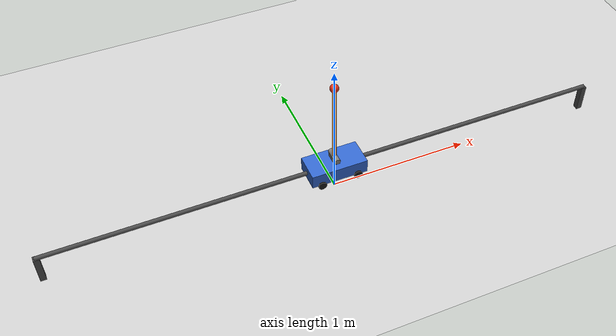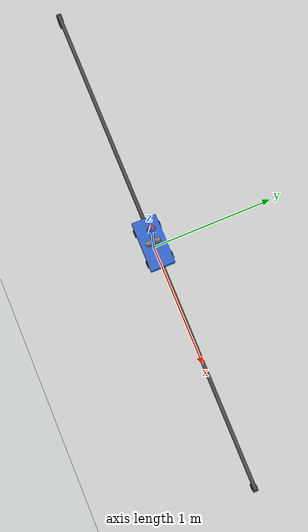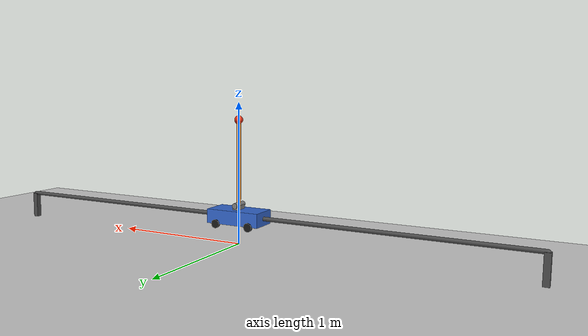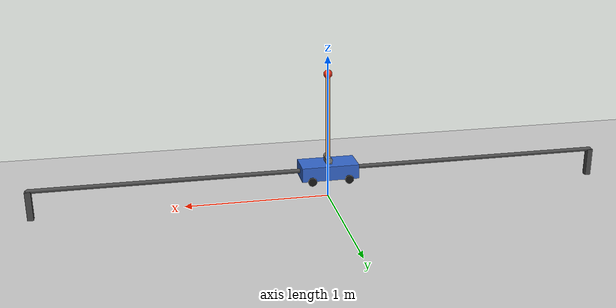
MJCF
<!--
  Cartpole: a cart on a rail, with a pole hinged on top.
  Units: meters, kilograms, seconds, radians, newtons.
  Axes: x = along the rail, z = up. The pole swings in the x-z plane.
-->
<mujoco model="cartpole">

  <!-- ============ PHYSICS SETTINGS ============ -->
  <!-- timestep: smaller = more accurate but slower (0.002 s = 500 physics steps per second)
       integrator: "implicitfast" handles damping/friction more stably than the default -->
  <option timestep="0.002" integrator="implicitfast" gravity="0 0 -9.81">
    <!-- MuJoCo normally skips collisions between a body and its parent (pole and cart).
         Disabling that filter lets the pole hit the cart instead of passing through it. -->
    <flag filterparent="disable"/>
  </option>

  <!-- ============ DEFAULTS ============ -->
  <!-- Every geom gets these unless it overrides them.
       contype/conaffinity = 0 means "no collisions" (used for purely visual parts). -->
  <default>
    <geom contype="0" conaffinity="0"/>

    <default class="solid">
      <geom contype="1" conaffinity="1" friction="0.8" solref="0.005 1"/>
    </default>
  </default>

  <!-- ============ LOOKS (no effect on physics) ============ -->
  <asset>
    <texture name="grid" type="2d" builtin="checker" rgb1="0.85 0.85 0.85" rgb2="0.75 0.75 0.75"
             width="512" height="512"/>
    <material name="grid" texture="grid" texrepeat="8 8"/>
  </asset>

  <worldbody>
    <light pos="0 -1 3" dir="0 0.3 -1"/>
    <geom name="floor" class="solid" type="plane" size="3 3 0.1" material="grid"/>

    <!-- Camera that follows the cart. In the viewer: Camera dropdown -> "follow" -->
    <camera name="follow" mode="trackcom" pos="0 -3 0.8" xyaxes="1 0 0 0 0.2 1"/>

    <!-- ============ RAIL (fixed to the world) ============ -->
    <geom name="rail" type="capsule" fromto="-2 0 0.2  2 0 0.2" size="0.015" rgba="0.3 0.3 0.3 1"/>
    <!-- Rail and end posts are visual only: the slider joint's range acts as the end stop -->
    <geom name="post_left"  type="box" pos="-2 0 0.1" size="0.02 0.02 0.1" rgba="0.3 0.3 0.3 1"/>
    <geom name="post_right" type="box" pos=" 2 0 0.1" size="0.02 0.02 0.1" rgba="0.3 0.3 0.3 1"/>

    <!-- ============ CART ============ -->
    <body name="cart" pos="0 0 0.2">
      <joint name="slider" type="slide" axis="1 0 0"
             limited="true" range="-1.8 1.8"
             damping="1.0" frictionloss="0.5" armature="0.05"/>

      <!-- Cart body. Box size is HALF-lengths: this is 0.4 x 0.2 x 0.1 m. -->
      <geom name="cart_geom" class="solid" type="box" size="0.2 0.1 0.05" mass="1.0" rgba="0.2 0.4 0.8 1"/>

      <!-- Wheels (looks only, mass 0 so they don't change the physics) -->
      <geom name="wheel_fl" type="cylinder" pos=" 0.13  0.1 -0.05" euler="90 0 0" size="0.03 0.01" mass="0" rgba="0.1 0.1 0.1 1"/>
      <geom name="wheel_fr" type="cylinder" pos=" 0.13 -0.1 -0.05" euler="90 0 0" size="0.03 0.01" mass="0" rgba="0.1 0.1 0.1 1"/>
      <geom name="wheel_bl" type="cylinder" pos="-0.13  0.1 -0.05" euler="90 0 0" size="0.03 0.01" mass="0" rgba="0.1 0.1 0.1 1"/>
      <geom name="wheel_br" type="cylinder" pos="-0.13 -0.1 -0.05" euler="90 0 0" size="0.03 0.01" mass="0" rgba="0.1 0.1 0.1 1"/>

      <!-- Mount holding the axle above the cart (looks only) -->
      <geom name="mount" type="box" pos="0 0 0.065" size="0.02 0.05 0.015" mass="0" rgba="0.5 0.5 0.5 1"/>

      <!-- ============ POLE ============ -->
      <body name="pole" pos="0 0 0.08">
        <joint name="hinge" type="hinge" axis="0 1 0" damping="0.002" frictionloss="0.002"/>

        <!-- Axle at the pivot (looks only) -->
        <geom name="axle" type="cylinder" euler="90 0 0" size="0.02 0.06" mass="0" rgba="0.5 0.5 0.5 1"/>

        <!-- The pole: a thin rod going UP from the pivot.
             Length = last number in fromto (m). Radius = size (m). -->
        <geom name="pole_geom" class="solid" type="capsule" fromto="0 0 0  0 0 0.6" size="0.015"
              mass="0.2" rgba="0.9 0.5 0.1 1"/>

        <!-- Optional weight at the tip: set mass above 0 to make the pole top-heavy -->
        <geom name="tip_mass" class="solid" type="sphere" pos="0 0 0.6" size="0.03" mass="0" rgba="0.9 0.2 0.1 1"/>
      </body>
    </body>
  </worldbody>

  <!-- ============ MOTOR ============ -->
  <actuator>
    <general name="cart_motor" joint="slider" gear="20"
             ctrllimited="true" ctrlrange="-1 1"
             dyntype="filter" dynprm="0.02"/>
  </actuator>

  <!-- ============ SENSORS ============ -->
  <!-- Like the encoders on a real cartpole. Read them in Python with data.sensordata,
       or data.sensor("cart_pos").data. -->
  <sensor>
    <jointpos name="cart_pos"  joint="slider"/>
    <jointvel name="cart_vel"  joint="slider"/>
    <jointpos name="pole_angle" joint="hinge"/>
    <jointvel name="pole_vel"  joint="hinge"/>
  </sensor>

</mujoco>
